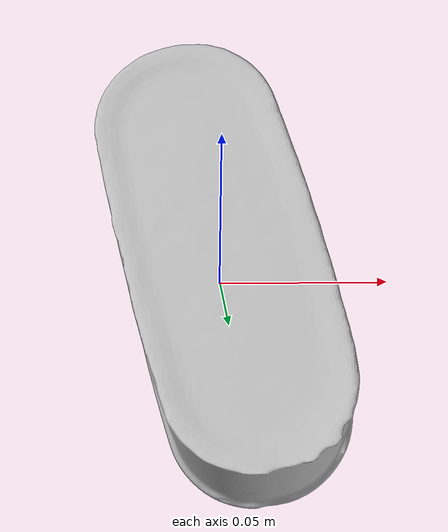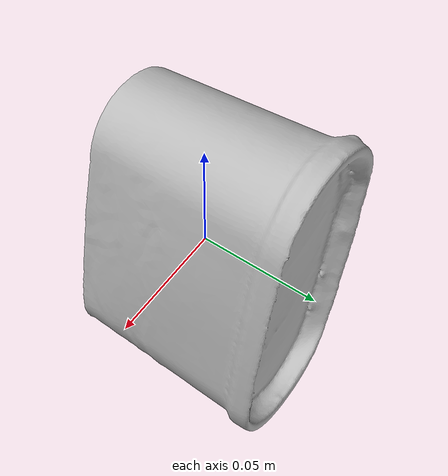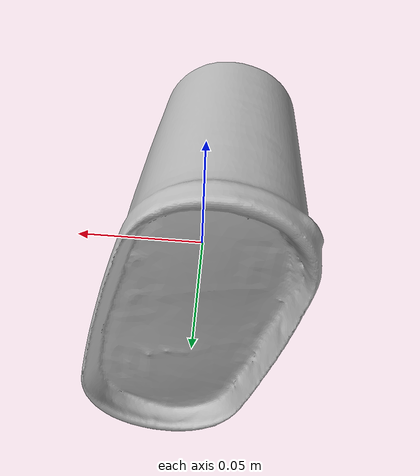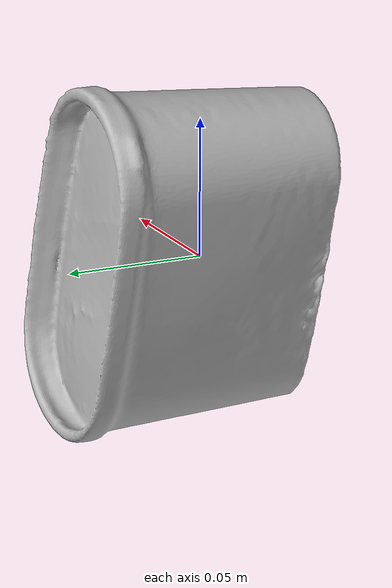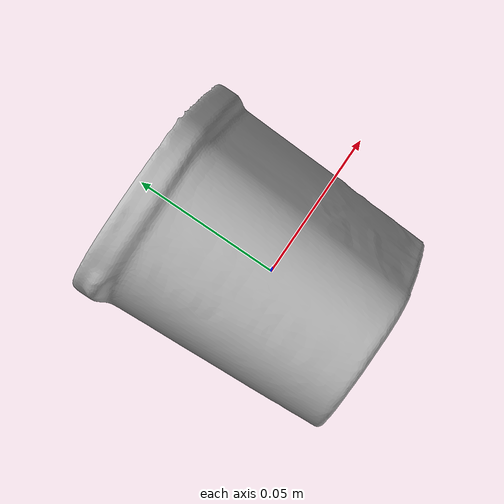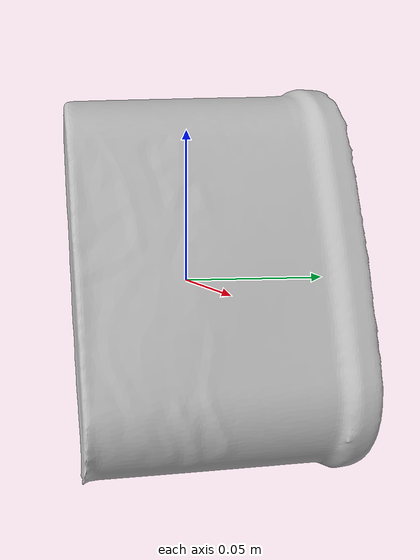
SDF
<?xml version='1.0'?>
<sdf version="1.4">
  <model name="InstantSoup">
    <static>false</static>
    <link name="link">
      <inertial>
        <pose>0.002262303474573912 0.007827669887932829 0.0005553403807920626 3.123432932334786 0.2650503402565182 3.1413414240105837</pose>
        <mass>0.058125263347199904</mass>
        <inertia>
          <ixx>0.00010156097894523286</ixx>
          <ixy>-9.786332022872248e-22</ixy>
          <ixz>-7.406284086733273e-21</ixz>
          <iyy>8.070216564222836e-05</iyy>
          <iyz>1.5610959664757772e-20</iyz>
          <izz>5.131501112832332e-05</izz>
        </inertia>
      </inertial>
      <collision name="collision">
        <geometry>
          <mesh>
            <!-- Use a downsampled mesh for collisions -->
            <uri>model:///InstantSoup/InstantSoup_250_collision.obj</uri>
	        </mesh>
        </geometry>
        <surface>
      </surface>
      </collision>
      <visual name="visual">
        <geometry>
          <mesh>
            <uri>model:///InstantSoup/InstantSoup_25k_tex.obj</uri>
	        </mesh>
        </geometry>
        <material>
          <script>
            <uri>model:///InstantSoup/InstantSoup.material</uri>
            <name>InstantSoup</name>
          </script>
        </material>
      </visual>
    </link>
  </model>
</sdf>
